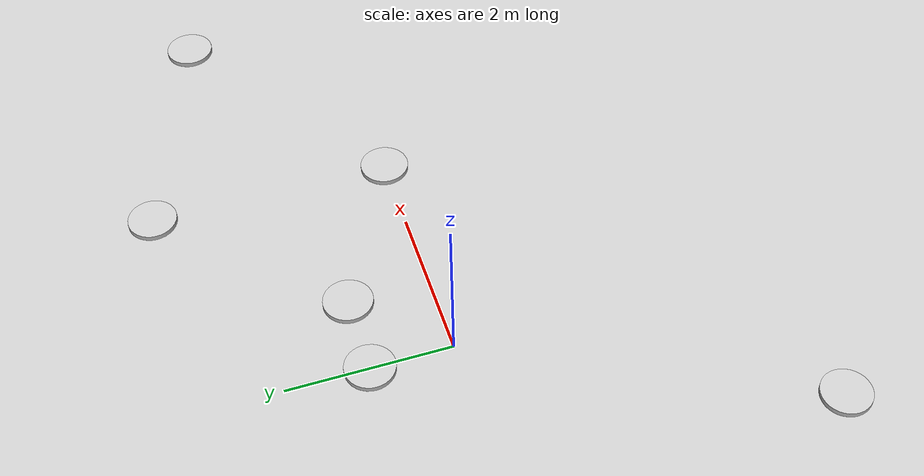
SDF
<?xml version="1.0" ?>

<sdf version="1.4">

  <world name="default">

    <include>
  			<uri>model://my_ground_plane</uri>
	</include>

    <!-- Light source -->
    <include>
      		<uri>model://sun</uri>
    </include>
	<include>
			<uri>model://pothole</uri>
			<name>potholeA</name>
			<pose>-2 -4 0  0 0 0</pose>

		</include>

		<include>
			<uri>model://pothole</uri>
			<name>potholeD</name>
			<pose>0 1 0  0 0 0</pose>
		</include>

		<include>
			<uri>model://pothole</uri>
			<name>potholeE</name>
			<pose>3 0 0  0 0 0</pose>
		</include>

		<include>
			<uri>model://pothole</uri>
			<name>potholeB</name>
			<pose>6 2 0  0 0 0</pose>
		</include>

		<include>
			<uri>model://pothole</uri>
			<name>potholeC</name>
			<pose>1 1 0  0 0 0</pose>
		</include>

		<include>
			<uri>model://pothole</uri>
			<name>potholeC</name>
			<pose>3 3 0  0 0 0</pose>
		</include>

    <!-- World camera -->
    <gui fullscreen='0'>
      <camera name='left_camera'>
        <pose>4.927360 -4.376610 3.740080 0.000000 0.275643 2.356190</pose>
        <view_controller>orbit</view_controller>
      </camera>
    </gui>

  </world>
</sdf>

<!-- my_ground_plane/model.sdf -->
<sdf version="1.7">
<model name="my_ground_plane">
  <static>true</static>
    <link name="link">
      <collision name="collision">
        <geometry>
          <plane>
            <normal>0 0 1</normal>
            <size>20 20</size>
          </plane>
        </geometry>
        <surface>
          <friction>
            <ode>
              <mu>100</mu>
              <mu2>50</mu2>
            </ode>
          </friction>
        </surface>
      </collision>
      <visual name="visual">
        <cast_shadows>false</cast_shadows>
        <geometry>
          <plane>
            <normal>0 0 1</normal>
            <size>20 20</size>
          </plane>
        </geometry>
        <material>
          <script>
            <uri>model://my_ground_plane/materials/scripts</uri>
            <uri>model://my_ground_plane/materials/textures/</uri>
            <name>MyGroundPlane/Image</name>
          </script>
        </material>
      </visual>
    </link>
  </model>
</sdf>

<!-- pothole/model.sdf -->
<sdf version="1.6">
  <model name="pothole">
    <pose>0 0 0 0 0 0</pose>
    <static>true</static>
    <link name="link">
      <inertial>
        <pose>0 0 0 0 0 0</pose>
        <mass>1</mass>
        <inertia>
          <ixx>1</ixx>
          <iyy>1</iyy>
          <izz>1</izz>
          <ixy>0</ixy>
          <ixz>0</ixz>
        </inertia>
      </inertial>
      <visual name="visual">
        <geometry>
          <mesh>
            <uri>model://pothole/meshes/pothole.dae</uri>
          </mesh>
        </geometry>
      </visual>
      <collision name="collision">
        <geometry>
          <mesh>
            <uri>model://pothole/meshes/pothole.dae</uri>
          </mesh>
        </geometry>
      </collision>
    </link>
  </model>
</sdf>
